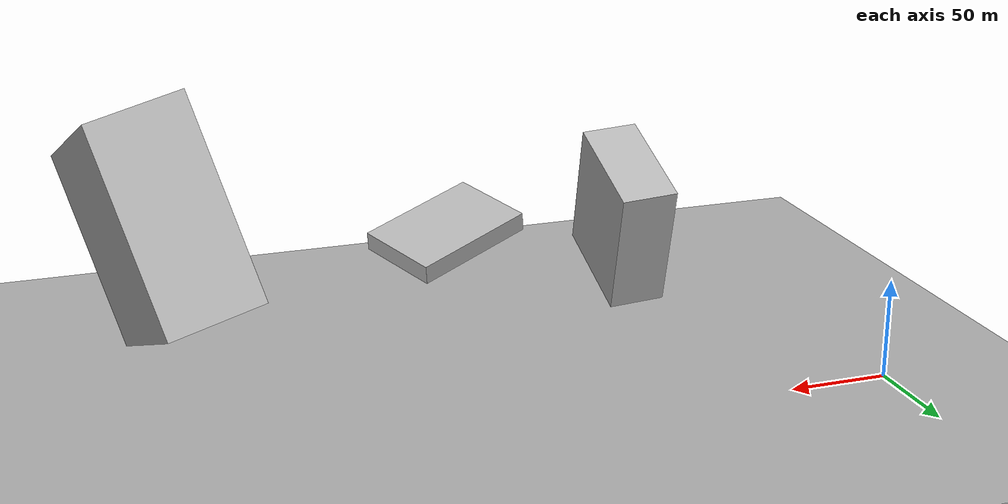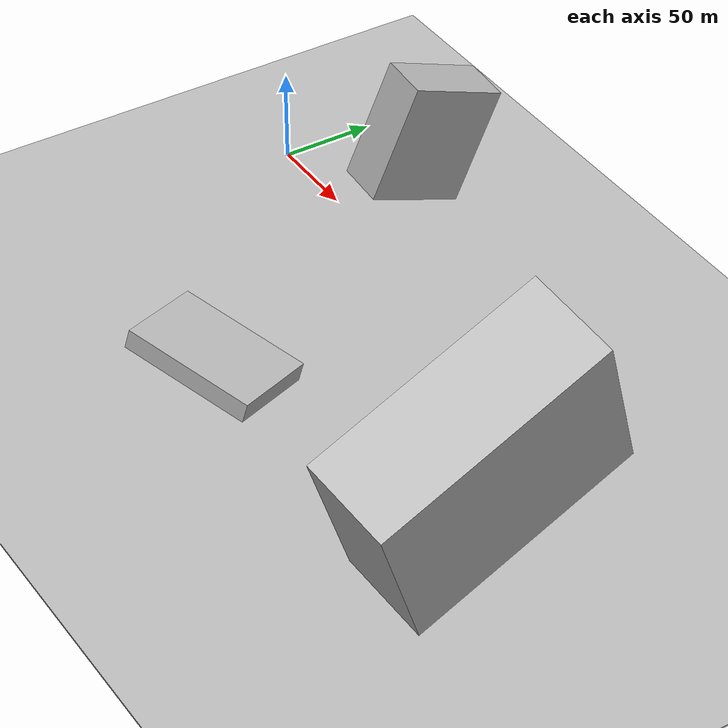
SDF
<?xml version="1.0" encoding="utf-8"?>

<sdf version="1.6">

   <world name="default">

      <gui fullscreen="0">

         <camera name="user_camera">

            <pose>-15 0 4.57585 0 0 0</pose>

            <view_controller>orbit</view_controller>

         </camera>

      </gui>

      <scene>

         <sky>

           <clouds>

             <speed>12</speed>

           </clouds>

         </sky>

         <ambient>0.4 0.4 0.4 1</ambient>

         <background>0.7 0.7 0.7 1</background>

         <shadows>1</shadows>

      </scene>

      <gravity>0 0 -9.8066</gravity>

      <magnetic_field>6e-06 2.3e-05 -4.2e-05</magnetic_field>

      <physics default="0" name="default_physics" type="ode">

         <ode>

            <solver>

               <type>quick</type>

               <iters>10</iters>

               <sor>1.0</sor>

               <use_dynamic_moi_rescaling>0</use_dynamic_moi_rescaling>

            </solver>

            <constraints>

               <cfm>0</cfm>

               <erp>0.2</erp>

               <contact_max_correcting_vel>100</contact_max_correcting_vel>

               <contact_surface_layer>0.001</contact_surface_layer>

            </constraints>

         </ode>

         <max_step_size>0.004</max_step_size>

         <real_time_factor>1</real_time_factor>

         <real_time_update_rate>250</real_time_update_rate>

      </physics>

      <light name="sun" type="directional">

         <cast_shadows>1</cast_shadows>

         <pose>0 0 10 0 0 0</pose>

         <diffuse>0.8 0.8 0.8 1</diffuse>

         <specular>0.2 0.2 0.2 1</specular>

         <attenuation>

            <range>1000</range>

            <constant>0.9</constant>

            <linear>0.01</linear>

            <quadratic>0.001</quadratic>

         </attenuation>

         <direction>-0.5 0.1 -0.9</direction>

      </light>

      <include>

         <name>ground_plane_1</name>

         <uri>model://HANNAS_ground_plane</uri>

         <pose>0 0 0  0 0 0</pose>

      </include>

      <include>

         <name>ground_plane_2</name>

         <uri>model://HANNAS_ground_plane</uri>

         <pose>100 0 0  0 0 0</pose>

      </include>
      <model name="building_1">

         <static>0</static>
         <pose frame="">136.91602777329908 -15.588317603833836 68.42652422528131 0.36872490374030764 -0.07035864765712589 3.1210210627316863</pose> <!--x y z roll pitch yaw -->

         <link name="link">
            <gravity>0</gravity>
            <pose frame="">0 0 30.5 0 0 0</pose>  <!--0 0 halfheight 0 0 0-->

            <collision name="collision">

               <geometry>

                  <box>

                     <size>25 51 61</size> <!--box widthx widthy height-->

                  </box>

               </geometry>

               <max_contacts>10</max_contacts>

               <surface>

                  <contact>

                     <ode/>

                  </contact>

                  <bounce/>

                  <friction>

                     <torsional>

                        <ode/>

                     </torsional>

                     <ode/>

                  </friction>

               </surface>

            </collision>

            <visual name="visual">

               <cast_shadows>0</cast_shadows>

               <geometry>

                  <box>

                     <size>25 51 61</size>

                  </box>

               </geometry>

               <material>

                  <script>

                     <uri>model://HANNAS_wall/materials/scripts</uri>

                     <uri>model://HANNAS_wall/materials/textures</uri>

                     <name>vrc/HANNAS_wall</name>

                  </script>

               </material>

            </visual>

            <self_collide>0</self_collide>

            <enable_wind>0</enable_wind>

            <kinematic>0</kinematic>

         </link>

      </model>

      <model name="building_2">

         <static>0</static>
         <pose frame="">312.70833555114007 -108.40292368250293 85.79841066651328 1.8162201461940104 -0.38665197508000215 1.6177897396913936</pose> <!--x y z roll pitch yaw -->

         <link name="link">
            <gravity>0</gravity>
            <pose frame="">0 0 24.0 0 0 0</pose>  <!--0 0 halfheight 0 0 0-->

            <collision name="collision">

               <geometry>

                  <box>

                     <size>124 102 48</size> <!--box widthx widthy height-->

                  </box>

               </geometry>

               <max_contacts>10</max_contacts>

               <surface>

                  <contact>

                     <ode/>

                  </contact>

                  <bounce/>

                  <friction>

                     <torsional>

                        <ode/>

                     </torsional>

                     <ode/>

                  </friction>

               </surface>

            </collision>

            <visual name="visual">

               <cast_shadows>0</cast_shadows>

               <geometry>

                  <box>

                     <size>124 102 48</size>

                  </box>

               </geometry>

               <material>

                  <script>

                     <uri>model://HANNAS_wall/materials/scripts</uri>

                     <uri>model://HANNAS_wall/materials/textures</uri>

                     <name>vrc/HANNAS_wall</name>

                  </script>

               </material>

            </visual>

            <self_collide>0</self_collide>

            <enable_wind>0</enable_wind>

            <kinematic>0</kinematic>

         </link>

      </model>

      <model name="building_3">

         <static>0</static>
         <pose frame="">178.79381761373486 -145.79565323654057 42.03846142933425 0.1517773137558583 -0.2009965689956971 -2.7302140715571035</pose> <!--x y z roll pitch yaw -->

         <link name="link">
            <gravity>0</gravity>
            <pose frame="">0 0 5.0 0 0 0</pose>  <!--0 0 halfheight 0 0 0-->

            <collision name="collision">

               <geometry>

                  <box>

                     <size>68 46 10</size> <!--box widthx widthy height-->

                  </box>

               </geometry>

               <max_contacts>10</max_contacts>

               <surface>

                  <contact>

                     <ode/>

                  </contact>

                  <bounce/>

                  <friction>

                     <torsional>

                        <ode/>

                     </torsional>

                     <ode/>

                  </friction>

               </surface>

            </collision>

            <visual name="visual">

               <cast_shadows>0</cast_shadows>

               <geometry>

                  <box>

                     <size>68 46 10</size>

                  </box>

               </geometry>

               <material>

                  <script>

                     <uri>model://HANNAS_wall/materials/scripts</uri>

                     <uri>model://HANNAS_wall/materials/textures</uri>

                     <name>vrc/HANNAS_wall</name>

                  </script>

               </material>

            </visual>

            <self_collide>0</self_collide>

            <enable_wind>0</enable_wind>

            <kinematic>0</kinematic>

         </link>

      </model>

   </world>
</sdf>

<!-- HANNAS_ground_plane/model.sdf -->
<sdf version="1.4">
<model name="HANNAS_ground_plane">
  <static>true</static>
    <link name="link">
      <collision name="collision">
        <geometry>
          <plane>
            <normal>0 0 1</normal>
            <size>1000 1000</size>
          </plane>
        </geometry>
        <surface>
          <friction>
            <ode>
              <mu>100</mu>
              <mu2>50</mu2>
            </ode>
          </friction>
        </surface>
      </collision>
      <visual name="visual">
        <cast_shadows>false</cast_shadows>
        <geometry>
          <plane>
            <normal>0 0 1</normal>
            <size>1000 1000</size>
          </plane>
        </geometry>
        <material>
          <script>
            <uri>model://HANNAS_ground_plane/materials/scripts/HANNAS_ground_plane.material</uri>
	    <uri>model://HANNAS_ground_plane/materials/textures</uri>
            <name>HANNASGroundPlane/Image</name>
          </script>
        </material>
      </visual>
    </link>
  </model>
</sdf>
